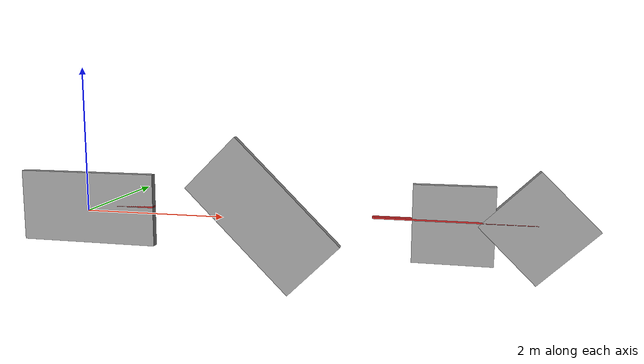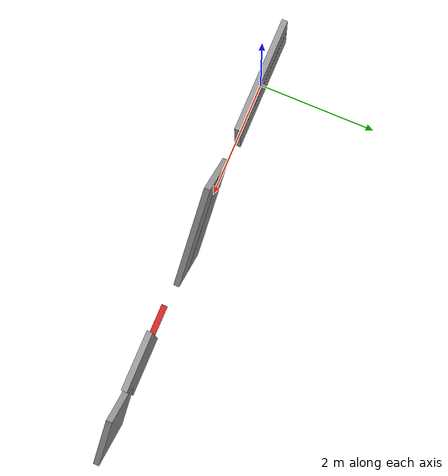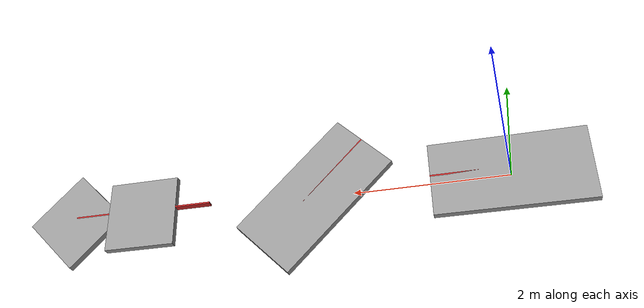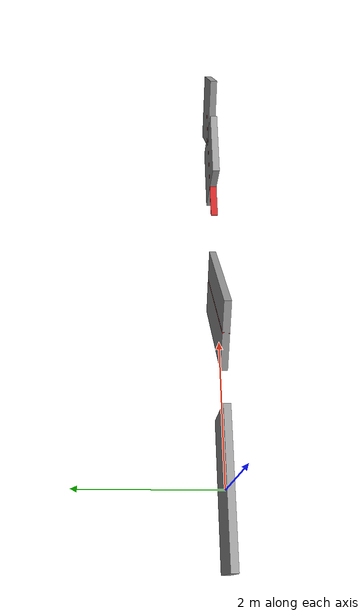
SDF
<?xml version="1.0"?>
<sdf version="1.6">
  <model name="wall_model">
    <!-- Material Definitions -->
    <material>
      <script>
        <uri>file://media/materials/scripts/gazebo.material</uri>
        <name>Gazebo/Grey</name>
      </script>
    </material>
    <material>
      <script>
        <uri>file://media/materials/scripts/gazebo.material</uri>
        <name>Gazebo/Red</name>
      </script>
    </material>
    <material>
      <script>
        <uri>file://media/materials/scripts/gazebo.material</uri>
        <name>Gazebo/White</name>
      </script>
    </material>

    <!-- Flat Wall -->
    <link name="flat_wall">
      <!-- Base Wall Layer -->
      <visual name="flat_wall_base">
        <pose>0 0 0.05 0 0 0</pose>
        <geometry>
          <box>
            <size>2.0 0.1 1.0</size>
          </box>
        </geometry>
        <material>
          <script>
            <name>Gazebo/Grey</name>
          </script>
        </material>
      </visual>
      <collision name="flat_wall_collision">
        <pose>0 0 0.05 0 0 0</pose>
        <geometry>
          <box>
            <size>2.0 0.1 1.0</size>
          </box>
        </geometry>
      </collision>

      <!-- Insulation Layer -->
      <visual name="flat_wall_insulation">
        <pose>0 0 0.1 0 0 0</pose>
        <geometry>
          <box>
            <size>2.0 0.1 0.02</size>
          </box>
        </geometry>
        <material>
          <script>
            <name>Gazebo/Red</name>
          </script>
        </material>
      </visual>
    </link>

    <!-- Sloped Wall -->
    <link name="sloped_wall">
      <pose>2.5 0 0 0 0.785 0</pose>
      <!-- Base Wall Layer -->
      <visual name="sloped_wall_base">
        <pose>0 0 0.05 0 0 0</pose>
        <geometry>
          <box>
            <size>2.0 0.1 1.0</size>
          </box>
        </geometry>
        <material>
          <script>
            <name>Gazebo/Grey</name>
          </script>
        </material>
      </visual>
      <collision name="sloped_wall_collision">
        <pose>0 0 0.05 0 0 0</pose>
        <geometry>
          <box>
            <size>2.0 0.1 1.0</size>
          </box>
        </geometry>
      </collision>

      <!-- Insulation Layer -->
      <visual name="sloped_wall_insulation">
        <pose>0 0 0.1 0 0 0</pose>
        <geometry>
          <box>
            <size>2.0 0.1 0.02</size>
          </box>
        </geometry>
        <material>
          <script>
            <name>Gazebo/Red</name>
          </script>
        </material>
      </visual>
    </link>

    <!-- Attic Wall (Combination) -->
    <link name="attic_wall">
      <pose>5.0 0 0 0 0 0</pose>
      <!-- Flat Section -->
      <visual name="attic_flat_base">
        <pose>0 0 0.05 0 0 0</pose>
        <geometry>
          <box>
            <size>1.0 0.1 1.0</size>
          </box>
        </geometry>
        <material>
          <script>
            <name>Gazebo/Grey</name>
          </script>
        </material>
      </visual>
      <collision name="attic_flat_collision">
        <pose>0 0 0.05 0 0 0</pose>
        <geometry>
          <box>
            <size>1.0 0.1 1.0</size>
          </box>
        </geometry>
      </collision>

      <!-- Sloped Section -->
      <visual name="attic_sloped_base">
        <pose>1.0 0 0.05 0 0.785 0</pose>
        <geometry>
          <box>
            <size>1.0 0.1 1.0</size>
          </box>
        </geometry>
        <material>
          <script>
            <name>Gazebo/Grey</name>
          </script>
        </material>
      </visual>
      <collision name="attic_sloped_collision">
        <pose>1.0 0 0.05 0 0.785 0</pose>
        <geometry>
          <box>
            <size>1.0 0.1 1.0</size>
          </box>
        </geometry>
      </collision>

      <!-- Insulation Layer -->
      <visual name="attic_insulation">
        <pose>0 0 0.1 0 0 0</pose>
        <geometry>
          <box>
            <size>2.0 0.1 0.02</size>
          </box>
        </geometry>
        <material>
          <script>
            <name>Gazebo/Red</name>
          </script>
        </material>
      </visual>
    </link>
  </model>
</sdf>
